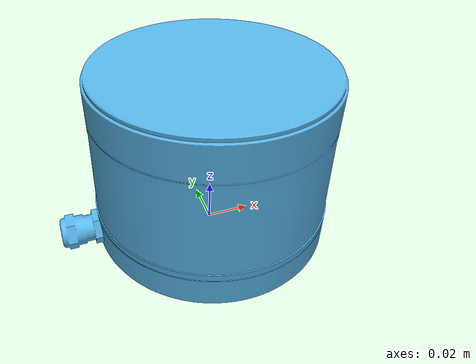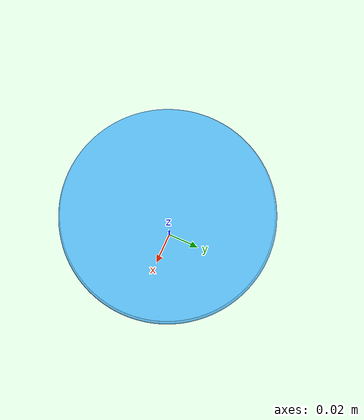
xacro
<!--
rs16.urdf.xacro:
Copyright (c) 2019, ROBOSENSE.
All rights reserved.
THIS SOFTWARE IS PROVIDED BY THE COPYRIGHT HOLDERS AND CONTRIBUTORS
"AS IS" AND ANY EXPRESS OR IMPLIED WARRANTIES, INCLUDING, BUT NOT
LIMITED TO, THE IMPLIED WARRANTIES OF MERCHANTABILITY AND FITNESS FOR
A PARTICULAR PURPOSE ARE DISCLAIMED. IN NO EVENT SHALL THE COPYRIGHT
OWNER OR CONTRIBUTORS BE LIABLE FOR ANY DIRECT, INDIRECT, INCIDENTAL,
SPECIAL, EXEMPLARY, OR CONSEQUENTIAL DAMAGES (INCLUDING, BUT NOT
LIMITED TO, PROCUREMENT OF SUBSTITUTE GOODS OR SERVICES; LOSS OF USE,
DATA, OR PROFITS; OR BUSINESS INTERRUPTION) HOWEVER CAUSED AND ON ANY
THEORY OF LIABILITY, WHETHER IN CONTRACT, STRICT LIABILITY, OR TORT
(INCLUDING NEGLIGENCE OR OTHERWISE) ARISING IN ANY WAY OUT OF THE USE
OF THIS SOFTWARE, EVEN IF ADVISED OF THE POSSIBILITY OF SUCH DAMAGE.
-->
<?xml version="1.0"?>
<robot name="view_rs16" xmlns:xacro="http://wiki.ros.org/xacro">
  <xacro:include filename="$(find rslidar_description)/urdf/rs16.urdf.xacro"/>

  <link name="world" />

  <rs16 name="rs16" frame_id="rslidar" parent="world">
    <origin rpy="0 0 0" xyz="0 0 0" />
  </rs16>

</robot>

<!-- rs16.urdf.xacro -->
<robot name="rs16" xmlns:xacro="http://wiki.ros.org/xacro">

  <xacro:macro name="rs16" params="name frame_id parent *origin">
    <link name="${name}_base_link">
      <inertial>
        <mass value="0.87" />
        <origin xyz="0 0 0" />
        <inertia ixx="1.0" ixy="0.0" ixz="0.0" iyy="1.0" iyz="0.0" izz="1.0" />
      </inertial>
      <visual>
        <geometry>
          <mesh filename="package://rslidar_description/mesh/RS16.stl"/>
        </geometry>
        <origin rpy="0 0 0" xyz="0 0 0"/>
      </visual>
    </link>

    <joint name="${name}_joint" type="fixed">
      <insert_block name="origin" />
      <parent link="${parent}"/>
      <child link="${name}_base_link" />
    </joint>

    <link name="${frame_id}"/>
    <joint name="${frame_id}_joint" type="fixed">
        <origin rpy="0 0 0" xyz="0 0 0.0398" />
        <parent link="${name}_base_link" />
        <child link="${frame_id}" />
    </joint>

  </xacro:macro>
</robot>
